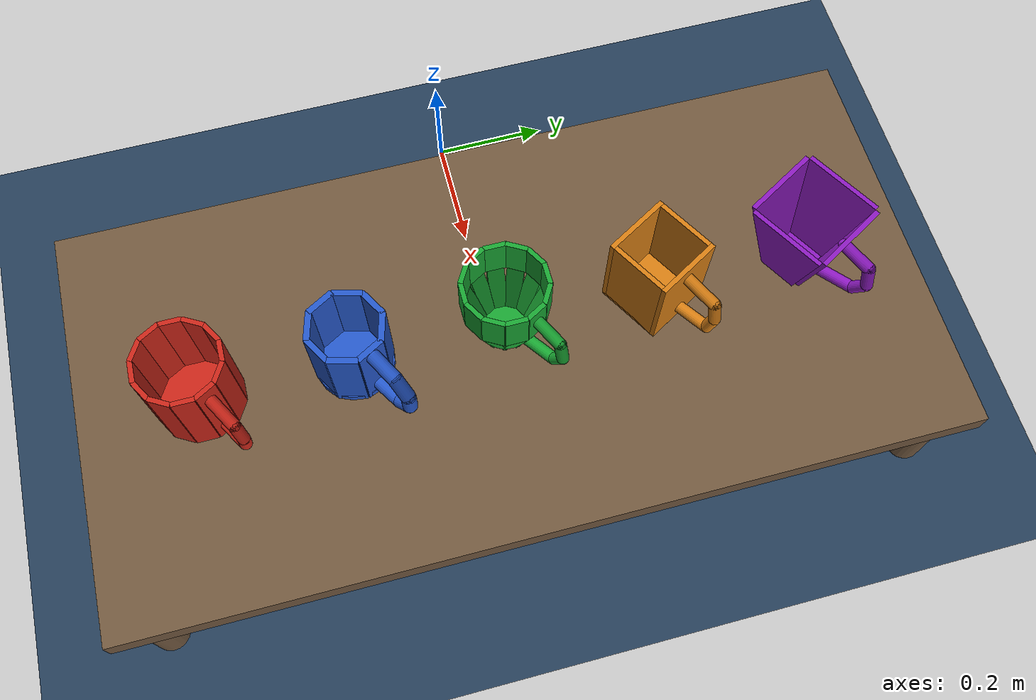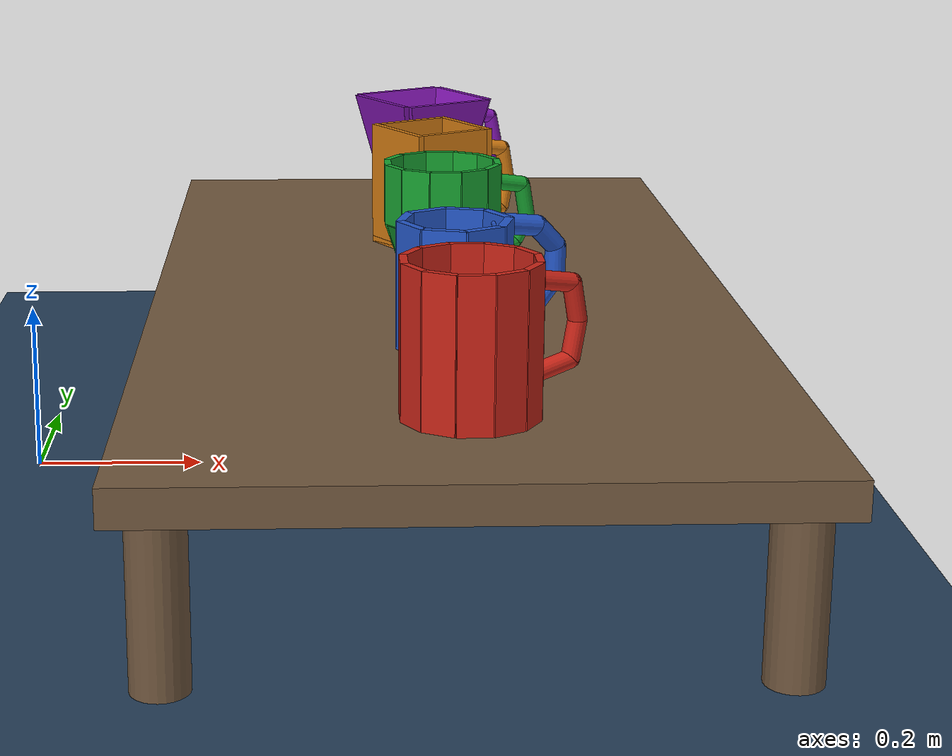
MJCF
<mujoco model="all_mugs_scene">
  <compiler angle="radian"/>
  <option integrator="implicitfast" timestep="0.002"/>

  <visual>
    <headlight diffuse="0.6 0.6 0.6" ambient="0.3 0.3 0.3" specular="0 0 0"/>
    <rgba haze="0.15 0.25 0.35 1"/>
  </visual>

  <asset>
    <texture type="skybox" builtin="gradient" rgb1="0.3 0.5 0.7" rgb2="0 0 0" width="512" height="3072"/>
    <texture type="2d" name="groundplane" builtin="checker" mark="edge"
      rgb1="0.2 0.3 0.4" rgb2="0.1 0.2 0.3" markrgb="0.8 0.8 0.8" width="300" height="300"/>
    <texture name="tex_wood" type="2d" builtin="flat" rgb1="0.4 0.25 0.15" rgb2="0.45 0.3 0.2" width="512" height="512"/>
    <material name="groundplane" texture="groundplane" texuniform="true" texrepeat="5 5" reflectance="0.2"/>
    <material name="table_mat" rgba="0.45 0.35 0.25 1" specular="0.2" shininess="0.1"/>
    <material name="mat_wood" texture="tex_wood" specular="0.1" shininess="0.1"/>
    <!-- Per-mug colors: red, blue, green, orange, purple -->
    <material name="mug_mat_0" rgba="0.80 0.15 0.10 1" specular="0.5" shininess="0.3"/>
    <material name="mug_mat_1" rgba="0.15 0.35 0.80 1" specular="0.5" shininess="0.3"/>
    <material name="mug_mat_2" rgba="0.10 0.65 0.20 1" specular="0.5" shininess="0.3"/>
    <material name="mug_mat_3" rgba="0.85 0.50 0.08 1" specular="0.5" shininess="0.3"/>
    <material name="mug_mat_4" rgba="0.55 0.10 0.75 1" specular="0.5" shininess="0.3"/>
    <mesh name="mug_wall_trapezoid" file="mug_4_wall.obj"/>
  </asset>

  <worldbody>
    <light pos="0 0 1.5" dir="0 0 -1" directional="true"/>
    <geom name="floor" size="0 0 0.05" type="plane" material="groundplane"/>

    <!-- Table: wider than individual scenes to fit 5 mugs along y-axis -->
    <body name="table" pos="0.50 0.00 0.1">
      <geom name="table_top" type="box" size="0.35 0.70 0.02" pos="0 0 0.1"
            material="table_mat" friction="3.0 0.05 0.01"/>
      <geom name="table_leg1" type="cylinder" size="0.03 0.1" pos=" 0.30  0.65 0" material="table_mat"/>
      <geom name="table_leg2" type="cylinder" size="0.03 0.1" pos="-0.30  0.65 0" material="table_mat"/>
      <geom name="table_leg3" type="cylinder" size="0.03 0.1" pos=" 0.30 -0.65 0" material="table_mat"/>
      <geom name="table_leg4" type="cylinder" size="0.03 0.1" pos="-0.30 -0.65 0" material="table_mat"/>
    </body>

    <!-- Mug 0: cylindrical 12-panel (mug_0.xml)                      -->
    <body name="mug_0" pos="0.5 -0.50 0.22" euler="0 0 -1.0472">
      <geom name="m0_bottom" type="cylinder" size="0.07 0.004" pos="0 0 0.004" material="mug_mat_0"/>
      <geom name="m0_wall_00" type="box" size="0.004 0.018 0.08" pos=" 0.066    0.000  0.08" euler="0 0 0"      material="mug_mat_0"/>
      <geom name="m0_wall_01" type="box" size="0.004 0.018 0.08" pos=" 0.05716  0.033  0.08" euler="0 0 0.5236" material="mug_mat_0"/>
      <geom name="m0_wall_02" type="box" size="0.004 0.018 0.08" pos=" 0.033    0.05716 0.08" euler="0 0 1.0472" material="mug_mat_0"/>
      <geom name="m0_wall_03" type="box" size="0.004 0.018 0.08" pos=" 0.000    0.066  0.08" euler="0 0 1.5708" material="mug_mat_0"/>
      <geom name="m0_wall_04" type="box" size="0.004 0.018 0.08" pos="-0.033    0.05716 0.08" euler="0 0 2.0944" material="mug_mat_0"/>
      <geom name="m0_wall_05" type="box" size="0.004 0.018 0.08" pos="-0.05716  0.033  0.08" euler="0 0 2.6180" material="mug_mat_0"/>
      <geom name="m0_wall_06" type="box" size="0.004 0.018 0.08" pos="-0.066    0.000  0.08" euler="0 0 3.1416" material="mug_mat_0"/>
      <geom name="m0_wall_07" type="box" size="0.004 0.018 0.08" pos="-0.05716 -0.033  0.08" euler="0 0 3.6652" material="mug_mat_0"/>
      <geom name="m0_wall_08" type="box" size="0.004 0.018 0.08" pos="-0.033   -0.05716 0.08" euler="0 0 4.1888" material="mug_mat_0"/>
      <geom name="m0_wall_09" type="box" size="0.004 0.018 0.08" pos=" 0.000   -0.066  0.08" euler="0 0 4.7124" material="mug_mat_0"/>
      <geom name="m0_wall_10" type="box" size="0.004 0.018 0.08" pos=" 0.033   -0.05716 0.08" euler="0 0 5.2360" material="mug_mat_0"/>
      <geom name="m0_wall_11" type="box" size="0.004 0.018 0.08" pos=" 0.05716 -0.033  0.08" euler="0 0 5.7596" material="mug_mat_0"/>
      <geom name="m0_handle_top" type="capsule" size="0.01" fromto="0 0.07  0.13 0 0.122 0.12" material="mug_mat_0"/>
      <geom name="m0_handle_mid" type="capsule" size="0.01" fromto="0 0.122 0.12 0 0.130 0.08" material="mug_mat_0"/>
      <geom name="m0_handle_bot" type="capsule" size="0.01" fromto="0 0.130 0.08 0 0.122 0.04" material="mug_mat_0"/>
      <geom name="m0_handle_low" type="capsule" size="0.01" fromto="0 0.122 0.04 0 0.07  0.03" material="mug_mat_0"/>
    </body>

    <!-- Mug 1: octagonal chunky D-handle (mug_1.xml)                 -->
    <body name="mug_1" pos="0.5 -0.25 0.22" euler="0 0 -1.0472">
      <geom name="m1_bottom" type="cylinder" size="0.064 0.006" pos="0 0 0.006" material="mug_mat_1"/>
      <geom name="m1_wall_00" type="box" size="0.005 0.024 0.072" pos=" 0.056    0.000  0.072" euler="0 0 0"      material="mug_mat_1"/>
      <geom name="m1_wall_01" type="box" size="0.005 0.024 0.072" pos=" 0.0396   0.0396 0.072" euler="0 0 0.7854" material="mug_mat_1"/>
      <geom name="m1_wall_02" type="box" size="0.005 0.024 0.072" pos=" 0.000    0.056  0.072" euler="0 0 1.5708" material="mug_mat_1"/>
      <geom name="m1_wall_03" type="box" size="0.005 0.024 0.072" pos="-0.0396   0.0396 0.072" euler="0 0 2.3562" material="mug_mat_1"/>
      <geom name="m1_wall_04" type="box" size="0.005 0.024 0.072" pos="-0.056    0.000  0.072" euler="0 0 3.1416" material="mug_mat_1"/>
      <geom name="m1_wall_05" type="box" size="0.005 0.024 0.072" pos="-0.0396  -0.0396 0.072" euler="0 0 3.9270" material="mug_mat_1"/>
      <geom name="m1_wall_06" type="box" size="0.005 0.024 0.072" pos=" 0.000   -0.056  0.072" euler="0 0 4.7124" material="mug_mat_1"/>
      <geom name="m1_wall_07" type="box" size="0.005 0.024 0.072" pos=" 0.0396  -0.0396 0.072" euler="0 0 5.4978" material="mug_mat_1"/>
      <geom name="m1_handle_top"   type="capsule" size="0.012" fromto="0 0.062 0.132 0 0.110 0.124" material="mug_mat_1"/>
      <geom name="m1_handle_upper" type="capsule" size="0.012" fromto="0 0.110 0.124 0 0.136 0.098" material="mug_mat_1"/>
      <geom name="m1_handle_mid"   type="capsule" size="0.012" fromto="0 0.136 0.098 0 0.136 0.062" material="mug_mat_1"/>
      <geom name="m1_handle_lower" type="capsule" size="0.012" fromto="0 0.136 0.062 0 0.110 0.036" material="mug_mat_1"/>
      <geom name="m1_handle_bot"   type="capsule" size="0.012" fromto="0 0.110 0.036 0 0.062 0.028" material="mug_mat_1"/>
    </body>

    <!-- Mug 2: tapered cylindrical (mug_2.xml)                       -->
    <body name="mug_2" pos="0.5 0.00 0.22" euler="0 0 -1.0472">
      <geom name="m2_bottom" type="cylinder" size="0.035 0.004" pos="0 0 0.004" material="mug_mat_2"/>
      <!-- Upper wall panels -->
      <geom name="m2_wall_00" type="box" size="0.004 0.018 0.036" pos=" 0.066    0.000   0.124" euler="0 0 0"      material="mug_mat_2"/>
      <geom name="m2_wall_01" type="box" size="0.004 0.018 0.036" pos=" 0.05716  0.033   0.124" euler="0 0 0.5236" material="mug_mat_2"/>
      <geom name="m2_wall_02" type="box" size="0.004 0.018 0.036" pos=" 0.033    0.05716 0.124" euler="0 0 1.0472" material="mug_mat_2"/>
      <geom name="m2_wall_03" type="box" size="0.004 0.018 0.036" pos=" 0.000    0.066   0.124" euler="0 0 1.5708" material="mug_mat_2"/>
      <geom name="m2_wall_04" type="box" size="0.004 0.018 0.036" pos="-0.033    0.05716 0.124" euler="0 0 2.0944" material="mug_mat_2"/>
      <geom name="m2_wall_05" type="box" size="0.004 0.018 0.036" pos="-0.05716  0.033   0.124" euler="0 0 2.6180" material="mug_mat_2"/>
      <geom name="m2_wall_06" type="box" size="0.004 0.018 0.036" pos="-0.066    0.000   0.124" euler="0 0 3.1416" material="mug_mat_2"/>
      <geom name="m2_wall_07" type="box" size="0.004 0.018 0.036" pos="-0.05716 -0.033   0.124" euler="0 0 3.6652" material="mug_mat_2"/>
      <geom name="m2_wall_08" type="box" size="0.004 0.018 0.036" pos="-0.033   -0.05716 0.124" euler="0 0 4.1888" material="mug_mat_2"/>
      <geom name="m2_wall_09" type="box" size="0.004 0.018 0.036" pos=" 0.000   -0.066   0.124" euler="0 0 4.7124" material="mug_mat_2"/>
      <geom name="m2_wall_10" type="box" size="0.004 0.018 0.036" pos=" 0.033   -0.05716 0.124" euler="0 0 5.2360" material="mug_mat_2"/>
      <geom name="m2_wall_11" type="box" size="0.004 0.018 0.036" pos=" 0.05716 -0.033   0.124" euler="0 0 5.7596" material="mug_mat_2"/>
      <!-- Tapered lower wall panels -->
      <geom name="m2_taper_00" type="box" size="0.004 0.014 0.0467" pos=" 0.05050  0.00000 0.04400" xyaxes=" 0.94319  0.00000 -0.33226  0.00000 1.00000 0.00000" material="mug_mat_2"/>
      <geom name="m2_taper_01" type="box" size="0.004 0.014 0.0467" pos=" 0.04373  0.02525 0.04400" xyaxes=" 0.81682  0.47159 -0.33226 -0.50000 0.86603 0.00000" material="mug_mat_2"/>
      <geom name="m2_taper_02" type="box" size="0.004 0.014 0.0467" pos=" 0.02525  0.04373 0.04400" xyaxes=" 0.47159  0.81682 -0.33226 -0.86603 0.50000 0.00000" material="mug_mat_2"/>
      <geom name="m2_taper_03" type="box" size="0.004 0.014 0.0467" pos=" 0.00000  0.05050 0.04400" xyaxes=" 0.00000  0.94319 -0.33226 -1.00000 0.00000 0.00000" material="mug_mat_2"/>
      <geom name="m2_taper_04" type="box" size="0.004 0.014 0.0467" pos="-0.02525  0.04373 0.04400" xyaxes="-0.47159  0.81682 -0.33226 -0.86603 -0.50000 0.00000" material="mug_mat_2"/>
      <geom name="m2_taper_05" type="box" size="0.004 0.014 0.0467" pos="-0.04373  0.02525 0.04400" xyaxes="-0.81682  0.47159 -0.33226 -0.50000 -0.86603 0.00000" material="mug_mat_2"/>
      <geom name="m2_taper_06" type="box" size="0.004 0.014 0.0467" pos="-0.05050  0.00000 0.04400" xyaxes="-0.94319  0.00000 -0.33226  0.00000 -1.00000 0.00000" material="mug_mat_2"/>
      <geom name="m2_taper_07" type="box" size="0.004 0.014 0.0467" pos="-0.04373 -0.02525 0.04400" xyaxes="-0.81682 -0.47159 -0.33226  0.50000 -0.86603 0.00000" material="mug_mat_2"/>
      <geom name="m2_taper_08" type="box" size="0.004 0.014 0.0467" pos="-0.02525 -0.04373 0.04400" xyaxes="-0.47159 -0.81682 -0.33226  0.86603 -0.50000 0.00000" material="mug_mat_2"/>
      <geom name="m2_taper_09" type="box" size="0.004 0.014 0.0467" pos=" 0.00000 -0.05050 0.04400" xyaxes=" 0.00000 -0.94319 -0.33226  1.00000  0.00000 0.00000" material="mug_mat_2"/>
      <geom name="m2_taper_10" type="box" size="0.004 0.014 0.0467" pos=" 0.02525 -0.04373 0.04400" xyaxes=" 0.47159 -0.81682 -0.33226  0.86603  0.50000 0.00000" material="mug_mat_2"/>
      <geom name="m2_taper_11" type="box" size="0.004 0.014 0.0467" pos=" 0.04373 -0.02525 0.04400" xyaxes=" 0.81682 -0.47159 -0.33226  0.50000  0.86603 0.00000" material="mug_mat_2"/>
      <geom name="m2_handle_top" type="capsule" size="0.01" fromto="0 0.066 0.13  0 0.118 0.12"  material="mug_mat_2"/>
      <geom name="m2_handle_mid" type="capsule" size="0.01" fromto="0 0.118 0.12  0 0.126 0.08"  material="mug_mat_2"/>
      <geom name="m2_handle_bot" type="capsule" size="0.01" fromto="0 0.126 0.08  0 0.108 0.05"  material="mug_mat_2"/>
      <geom name="m2_handle_low" type="capsule" size="0.01" fromto="0 0.108 0.05  0 0.040 0.03"  material="mug_mat_2"/>
    </body>

    <!-- Mug 3: square with four vertical walls (mug_3.xml)           -->
    <body name="mug_3" pos="0.5 0.25 0.22" euler="0 0 -1.0472">
      <geom name="m3_bottom"  type="box" size="0.0572 0.0572 0.004" pos="0 0 0.004"    material="mug_mat_3"/>
      <geom name="m3_wall_00" type="box" size="0.0572 0.004  0.08"  pos=" 0.000  0.0532 0.08" material="mug_mat_3"/>
      <geom name="m3_wall_01" type="box" size="0.004  0.0492 0.08"  pos="-0.0532 0.000  0.08" material="mug_mat_3"/>
      <geom name="m3_wall_02" type="box" size="0.0572 0.004  0.08"  pos=" 0.000 -0.0532 0.08" material="mug_mat_3"/>
      <geom name="m3_wall_03" type="box" size="0.004  0.0492 0.08"  pos=" 0.0532 0.000  0.08" material="mug_mat_3"/>
      <geom name="m3_handle_top" type="capsule" size="0.01" fromto="0 0.0532 0.13  0 0.114 0.12"  material="mug_mat_3"/>
      <geom name="m3_handle_mid" type="capsule" size="0.01" fromto="0 0.114  0.12  0 0.122 0.08"  material="mug_mat_3"/>
      <geom name="m3_handle_bot" type="capsule" size="0.01" fromto="0 0.122  0.08  0 0.114 0.04"  material="mug_mat_3"/>
      <geom name="m3_handle_low" type="capsule" size="0.01" fromto="0 0.114  0.04  0 0.0532 0.03" material="mug_mat_3"/>
    </body>

    <!-- Mug 4: tapered square with mesh walls (mug_4.xml)            -->
    <body name="mug_4" pos="0.5 0.50 0.22" euler="0 0 -1.0472">
      <geom name="m4_bottom"   type="box"  size="0.033 0.033 0.004" pos="0 0 0.004"             material="mug_mat_4"/>
      <geom name="m4_wall_00"  type="mesh" mesh="mug_wall_trapezoid"                            material="mug_mat_4"/>
      <geom name="m4_wall_01"  type="mesh" mesh="mug_wall_trapezoid" euler="0 0 1.5708"         material="mug_mat_4"/>
      <geom name="m4_wall_02"  type="mesh" mesh="mug_wall_trapezoid" euler="0 0 3.1416"         material="mug_mat_4"/>
      <geom name="m4_wall_03"  type="mesh" mesh="mug_wall_trapezoid" euler="0 0 4.7124"         material="mug_mat_4"/>
      <geom name="m4_handle_top" type="capsule" size="0.01" fromto="0 0.066  0.132 0 0.118 0.122" material="mug_mat_4"/>
      <geom name="m4_handle_mid" type="capsule" size="0.01" fromto="0 0.118  0.122 0 0.128 0.08"  material="mug_mat_4"/>
      <geom name="m4_handle_bot" type="capsule" size="0.01" fromto="0 0.128  0.08  0 0.110 0.048" material="mug_mat_4"/>
      <geom name="m4_handle_low" type="capsule" size="0.01" fromto="0 0.110  0.048 0 0.038 0.025" material="mug_mat_4"/>
    </body>

    <!-- Overview camera: front-facing, slightly elevated -->
    <camera name="cam_overview" pos="0.5 -2.2 0.9" xyaxes="1 0 0 0 0.250 0.968" fovy="50"/>
    <!-- Side camera: looking from the right along -y -->
    <camera name="cam_side" pos="1.5 0.0 0.7" xyaxes="0 1 0 -0.436 0 0.900" fovy="45"/>

  </worldbody>
</mujoco>
